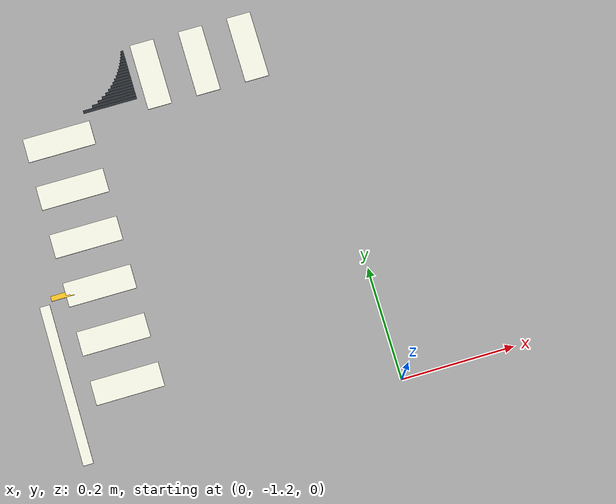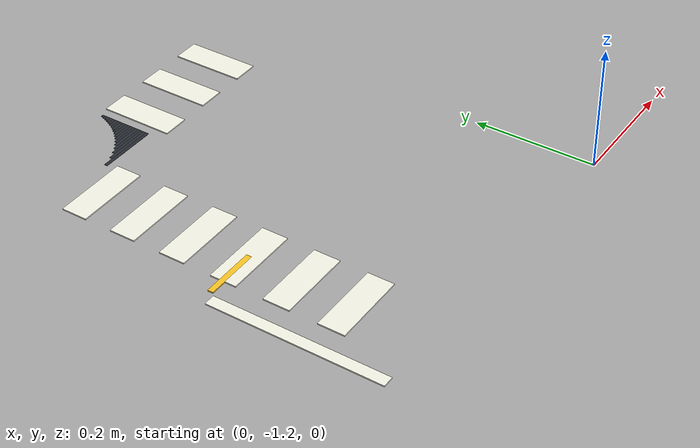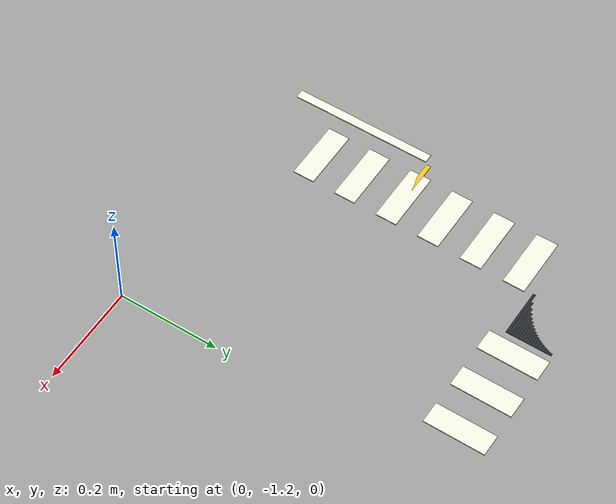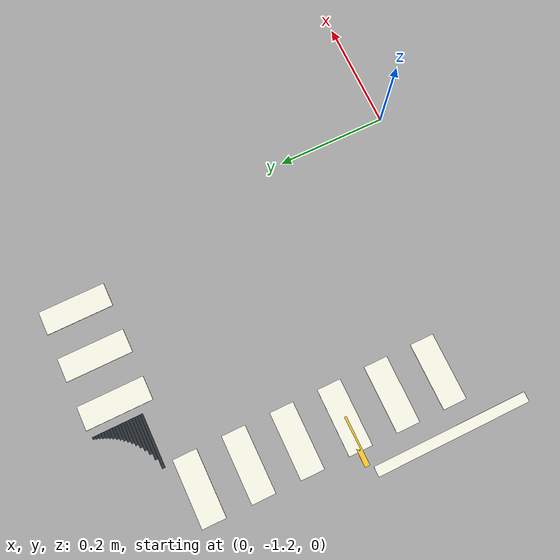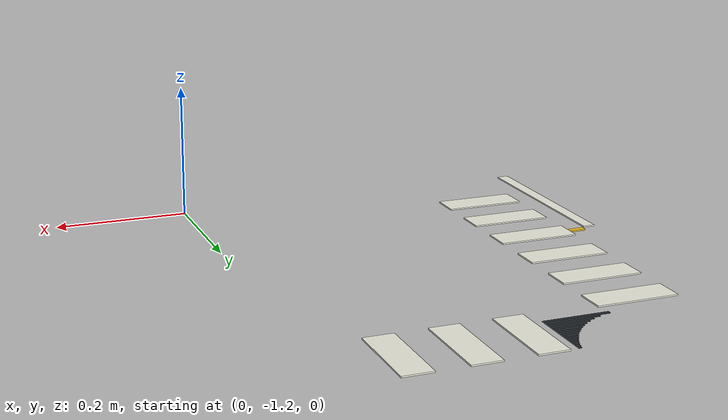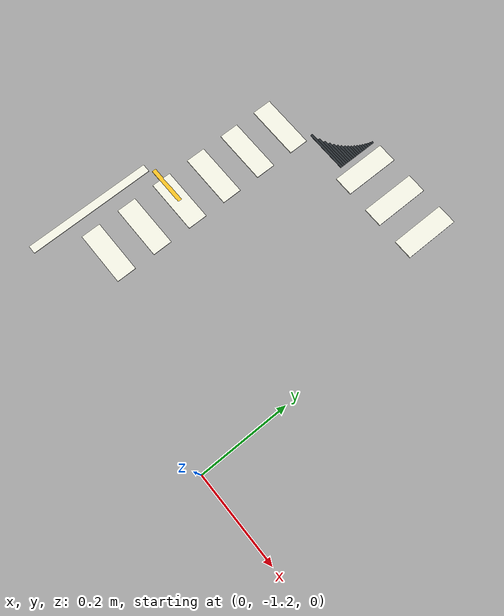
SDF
<sdf version="1.6">
 <world name="sandbox">
  <include><uri>model://sun</uri></include>
  <model name="cross_corner_-0.3_-0.5999999999999999_00">
   <static>true</static>
   <pose>-0.347817 -0.597500 0.004350 0.000000 0.000000 0.000000</pose>
   <link name="body">
    <visual name="visual">
     <geometry><box><size>0.095633 0.005500 0.000700</size></box></geometry>
     <material><ambient>0.16 0.18 0.20 1</ambient><diffuse>0.16 0.18 0.20 1</diffuse></material>
    </visual>
   </link>
  </model>
  <model name="cross_corner_-0.3_-0.5999999999999999_01">
   <static>true</static>
   <pose>-0.339121 -0.592500 0.004350 0.000000 0.000000 0.000000</pose>
   <link name="body">
    <visual name="visual">
     <geometry><box><size>0.078242 0.005500 0.000700</size></box></geometry>
     <material><ambient>0.16 0.18 0.20 1</ambient><diffuse>0.16 0.18 0.20 1</diffuse></material>
    </visual>
   </link>
  </model>
  <model name="cross_corner_-0.3_-0.5999999999999999_02">
   <static>true</static>
   <pose>-0.333337 -0.587500 0.004350 0.000000 0.000000 0.000000</pose>
   <link name="body">
    <visual name="visual">
     <geometry><box><size>0.066673 0.005500 0.000700</size></box></geometry>
     <material><ambient>0.16 0.18 0.20 1</ambient><diffuse>0.16 0.18 0.20 1</diffuse></material>
    </visual>
   </link>
  </model>
  <model name="cross_corner_-0.3_-0.5999999999999999_03">
   <static>true</static>
   <pose>-0.328800 -0.582500 0.004350 0.000000 0.000000 0.000000</pose>
   <link name="body">
    <visual name="visual">
     <geometry><box><size>0.057600 0.005500 0.000700</size></box></geometry>
     <material><ambient>0.16 0.18 0.20 1</ambient><diffuse>0.16 0.18 0.20 1</diffuse></material>
    </visual>
   </link>
  </model>
  <model name="cross_corner_-0.3_-0.5999999999999999_04">
   <static>true</static>
   <pose>-0.325022 -0.577500 0.004350 0.000000 0.000000 0.000000</pose>
   <link name="body">
    <visual name="visual">
     <geometry><box><size>0.050045 0.005500 0.000700</size></box></geometry>
     <material><ambient>0.16 0.18 0.20 1</ambient><diffuse>0.16 0.18 0.20 1</diffuse></material>
    </visual>
   </link>
  </model>
  <model name="cross_corner_-0.3_-0.5999999999999999_05">
   <static>true</static>
   <pose>-0.321778 -0.572500 0.004350 0.000000 0.000000 0.000000</pose>
   <link name="body">
    <visual name="visual">
     <geometry><box><size>0.043556 0.005500 0.000700</size></box></geometry>
     <material><ambient>0.16 0.18 0.20 1</ambient><diffuse>0.16 0.18 0.20 1</diffuse></material>
    </visual>
   </link>
  </model>
  <model name="cross_corner_-0.3_-0.5999999999999999_06">
   <static>true</static>
   <pose>-0.318940 -0.567500 0.004350 0.000000 0.000000 0.000000</pose>
   <link name="body">
    <visual name="visual">
     <geometry><box><size>0.037880 0.005500 0.000700</size></box></geometry>
     <material><ambient>0.16 0.18 0.20 1</ambient><diffuse>0.16 0.18 0.20 1</diffuse></material>
    </visual>
   </link>
  </model>
  <model name="cross_corner_-0.3_-0.5999999999999999_07">
   <static>true</static>
   <pose>-0.316429 -0.562500 0.004350 0.000000 0.000000 0.000000</pose>
   <link name="body">
    <visual name="visual">
     <geometry><box><size>0.032858 0.005500 0.000700</size></box></geometry>
     <material><ambient>0.16 0.18 0.20 1</ambient><diffuse>0.16 0.18 0.20 1</diffuse></material>
    </visual>
   </link>
  </model>
  <model name="cross_corner_-0.3_-0.5999999999999999_08">
   <static>true</static>
   <pose>-0.314191 -0.557500 0.004350 0.000000 0.000000 0.000000</pose>
   <link name="body">
    <visual name="visual">
     <geometry><box><size>0.028383 0.005500 0.000700</size></box></geometry>
     <material><ambient>0.16 0.18 0.20 1</ambient><diffuse>0.16 0.18 0.20 1</diffuse></material>
    </visual>
   </link>
  </model>
  <model name="cross_corner_-0.3_-0.5999999999999999_09">
   <static>true</static>
   <pose>-0.312189 -0.552500 0.004350 0.000000 0.000000 0.000000</pose>
   <link name="body">
    <visual name="visual">
     <geometry><box><size>0.024377 0.005500 0.000700</size></box></geometry>
     <material><ambient>0.16 0.18 0.20 1</ambient><diffuse>0.16 0.18 0.20 1</diffuse></material>
    </visual>
   </link>
  </model>
  <model name="cross_corner_-0.3_-0.5999999999999999_10">
   <static>true</static>
   <pose>-0.310392 -0.547500 0.004350 0.000000 0.000000 0.000000</pose>
   <link name="body">
    <visual name="visual">
     <geometry><box><size>0.020784 0.005500 0.000700</size></box></geometry>
     <material><ambient>0.16 0.18 0.20 1</ambient><diffuse>0.16 0.18 0.20 1</diffuse></material>
    </visual>
   </link>
  </model>
  <model name="cross_corner_-0.3_-0.5999999999999999_11">
   <static>true</static>
   <pose>-0.308780 -0.542500 0.004350 0.000000 0.000000 0.000000</pose>
   <link name="body">
    <visual name="visual">
     <geometry><box><size>0.017561 0.005500 0.000700</size></box></geometry>
     <material><ambient>0.16 0.18 0.20 1</ambient><diffuse>0.16 0.18 0.20 1</diffuse></material>
    </visual>
   </link>
  </model>
  <model name="cross_corner_-0.3_-0.5999999999999999_12">
   <static>true</static>
   <pose>-0.307337 -0.537500 0.004350 0.000000 0.000000 0.000000</pose>
   <link name="body">
    <visual name="visual">
     <geometry><box><size>0.014673 0.005500 0.000700</size></box></geometry>
     <material><ambient>0.16 0.18 0.20 1</ambient><diffuse>0.16 0.18 0.20 1</diffuse></material>
    </visual>
   </link>
  </model>
  <model name="cross_corner_-0.3_-0.5999999999999999_13">
   <static>true</static>
   <pose>-0.306047 -0.532500 0.004350 0.000000 0.000000 0.000000</pose>
   <link name="body">
    <visual name="visual">
     <geometry><box><size>0.012094 0.005500 0.000700</size></box></geometry>
     <material><ambient>0.16 0.18 0.20 1</ambient><diffuse>0.16 0.18 0.20 1</diffuse></material>
    </visual>
   </link>
  </model>
  <model name="cross_corner_-0.3_-0.5999999999999999_14">
   <static>true</static>
   <pose>-0.304901 -0.527500 0.004350 0.000000 0.000000 0.000000</pose>
   <link name="body">
    <visual name="visual">
     <geometry><box><size>0.009801 0.005500 0.000700</size></box></geometry>
     <material><ambient>0.16 0.18 0.20 1</ambient><diffuse>0.16 0.18 0.20 1</diffuse></material>
    </visual>
   </link>
  </model>
  <model name="cross_corner_-0.3_-0.5999999999999999_15">
   <static>true</static>
   <pose>-0.303889 -0.522500 0.004350 0.000000 0.000000 0.000000</pose>
   <link name="body">
    <visual name="visual">
     <geometry><box><size>0.007778 0.005500 0.000700</size></box></geometry>
     <material><ambient>0.16 0.18 0.20 1</ambient><diffuse>0.16 0.18 0.20 1</diffuse></material>
    </visual>
   </link>
  </model>
  <model name="cross_corner_-0.3_-0.5999999999999999_16">
   <static>true</static>
   <pose>-0.303005 -0.517500 0.004350 0.000000 0.000000 0.000000</pose>
   <link name="body">
    <visual name="visual">
     <geometry><box><size>0.006010 0.005500 0.000700</size></box></geometry>
     <material><ambient>0.16 0.18 0.20 1</ambient><diffuse>0.16 0.18 0.20 1</diffuse></material>
    </visual>
   </link>
  </model>
  <model name="cross_corner_-0.3_-0.5999999999999999_17">
   <static>true</static>
   <pose>-0.302242 -0.512500 0.004350 0.000000 0.000000 0.000000</pose>
   <link name="body">
    <visual name="visual">
     <geometry><box><size>0.004485 0.005500 0.000700</size></box></geometry>
     <material><ambient>0.16 0.18 0.20 1</ambient><diffuse>0.16 0.18 0.20 1</diffuse></material>
    </visual>
   </link>
  </model>
  <model name="horiz_center_4">
   <static>true</static>
   <pose>-0.492500 -0.900000 0.006000 0.000000 -0.000000 0.000000</pose>
   <link name="body">
    <visual name="visual">
     <geometry><box><size>0.087000 0.009000 0.002000</size></box></geometry>
     <material><ambient>0.98 0.77 0.14 1</ambient><diffuse>0.98 0.77 0.14 1</diffuse></material>
    </visual>
   </link>
  </model>
  <model name="zebra_north_0">
   <static>true</static>
   <pose>-0.265000 -0.565000 0.006000 0.000000 0.000000 0.000000</pose>
   <link name="body">
    <visual name="visual">
     <geometry><box><size>0.043000 0.120000 0.002000</size></box></geometry>
     <material><ambient>0.96 0.96 0.90 1</ambient><diffuse>0.96 0.96 0.90 1</diffuse></material>
    </visual>
   </link>
  </model>
  <model name="zebra_north_1">
   <static>true</static>
   <pose>-0.177000 -0.565000 0.006000 0.000000 0.000000 0.000000</pose>
   <link name="body">
    <visual name="visual">
     <geometry><box><size>0.043000 0.120000 0.002000</size></box></geometry>
     <material><ambient>0.96 0.96 0.90 1</ambient><diffuse>0.96 0.96 0.90 1</diffuse></material>
    </visual>
   </link>
  </model>
  <model name="zebra_north_2">
   <static>true</static>
   <pose>-0.089000 -0.565000 0.006000 0.000000 0.000000 0.000000</pose>
   <link name="body">
    <visual name="visual">
     <geometry><box><size>0.043000 0.120000 0.002000</size></box></geometry>
     <material><ambient>0.96 0.96 0.90 1</ambient><diffuse>0.96 0.96 0.90 1</diffuse></material>
    </visual>
   </link>
  </model>
  <model name="zebra_west_1">
   <static>true</static>
   <pose>-0.450000 -1.077000 0.006000 0.000000 0.000000 0.000000</pose>
   <link name="body">
    <visual name="visual">
     <geometry><box><size>0.120000 0.043000 0.002000</size></box></geometry>
     <material><ambient>0.96 0.96 0.90 1</ambient><diffuse>0.96 0.96 0.90 1</diffuse></material>
    </visual>
   </link>
  </model>
  <model name="zebra_west_2">
   <static>true</static>
   <pose>-0.450000 -0.989000 0.006000 0.000000 0.000000 0.000000</pose>
   <link name="body">
    <visual name="visual">
     <geometry><box><size>0.120000 0.043000 0.002000</size></box></geometry>
     <material><ambient>0.96 0.96 0.90 1</ambient><diffuse>0.96 0.96 0.90 1</diffuse></material>
    </visual>
   </link>
  </model>
  <model name="zebra_west_3">
   <static>true</static>
   <pose>-0.450000 -0.901000 0.006000 0.000000 0.000000 0.000000</pose>
   <link name="body">
    <visual name="visual">
     <geometry><box><size>0.120000 0.043000 0.002000</size></box></geometry>
     <material><ambient>0.96 0.96 0.90 1</ambient><diffuse>0.96 0.96 0.90 1</diffuse></material>
    </visual>
   </link>
  </model>
  <model name="zebra_west_4">
   <static>true</static>
   <pose>-0.450000 -0.813000 0.006000 0.000000 0.000000 0.000000</pose>
   <link name="body">
    <visual name="visual">
     <geometry><box><size>0.120000 0.043000 0.002000</size></box></geometry>
     <material><ambient>0.96 0.96 0.90 1</ambient><diffuse>0.96 0.96 0.90 1</diffuse></material>
    </visual>
   </link>
  </model>
  <model name="zebra_west_5">
   <static>true</static>
   <pose>-0.450000 -0.725000 0.006000 0.000000 0.000000 0.000000</pose>
   <link name="body">
    <visual name="visual">
     <geometry><box><size>0.120000 0.043000 0.002000</size></box></geometry>
     <material><ambient>0.96 0.96 0.90 1</ambient><diffuse>0.96 0.96 0.90 1</diffuse></material>
    </visual>
   </link>
  </model>
  <model name="zebra_west_6">
   <static>true</static>
   <pose>-0.450000 -0.637000 0.006000 0.000000 0.000000 0.000000</pose>
   <link name="body">
    <visual name="visual">
     <geometry><box><size>0.120000 0.043000 0.002000</size></box></geometry>
     <material><ambient>0.96 0.96 0.90 1</ambient><diffuse>0.96 0.96 0.90 1</diffuse></material>
    </visual>
   </link>
  </model>
  <model name="stop_west">
   <static>true</static>
   <pose>-0.550000 -1.050000 0.006000 0.000000 -0.000000 1.570796</pose>
   <link name="body">
    <visual name="visual">
     <geometry><box><size>0.282000 0.018000 0.002000</size></box></geometry>
     <material><ambient>0.96 0.96 0.90 1</ambient><diffuse>0.96 0.96 0.90 1</diffuse></material>
    </visual>
   </link>
  </model>
 </world>
</sdf>
